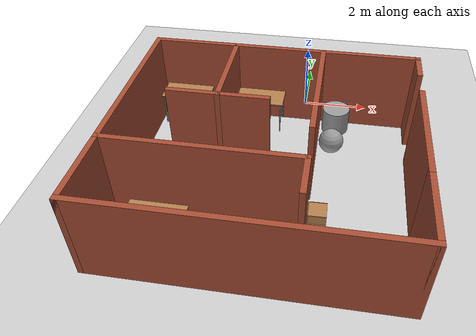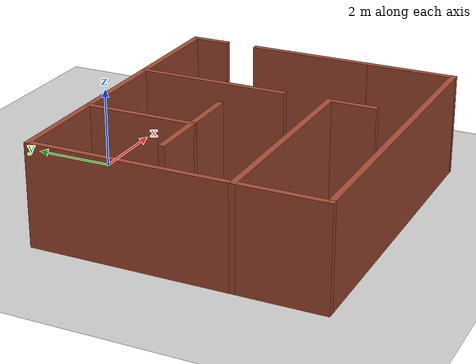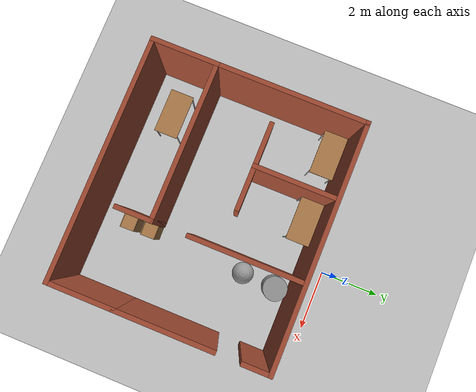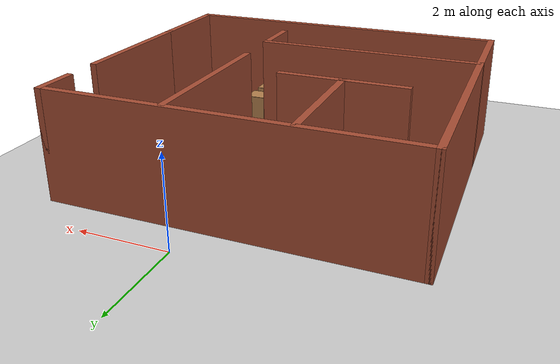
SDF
<sdf version="1.6">
 <world name="default">
  <light name="sun" type="directional">
   <pose>0 0 10 0 -0 0</pose>
   <diffuse>0.8 0.8 0.8 1</diffuse>
   <specular>0.2 0.2 0.2 1</specular>
   <attenuation>
    <range>1000</range>
    <constant>0.9</constant>
    <linear>0.01</linear>
    <quadratic>0.001</quadratic>
   </attenuation>
   <direction>-0.5 0.1 -0.9</direction>
  </light>
  <model name="ground_plane">
   <static>1</static>
   <link name="link">
    <collision name="collision">
     <geometry><plane><normal>0 0 1</normal><size>100 100</size></plane></geometry>
     <surface>
      <contact><collide_bitmask>65535</collide_bitmask></contact>
      <friction><ode><mu>100</mu><mu2>50</mu2></ode></friction>
     </surface>
    </collision>
    <visual name="visual">
     <cast_shadows>0</cast_shadows>
     <geometry><plane><normal>0 0 1</normal><size>100 100</size></plane></geometry>
     <material>
      <script><uri>file://media/materials/scripts/gazebo.material</uri><name>Gazebo/Grey</name></script>
     </material>
    </visual>
   </link>
  </model>
  <gravity>0 0 -9.8</gravity>
  <magnetic_field>6e-06 2.3e-05 -4.2e-05</magnetic_field>
  <atmosphere type="adiabatic"/>
  <physics name="default_physics" default="0" type="ode">
   <max_step_size>0.001</max_step_size>
   <real_time_factor>1</real_time_factor>
   <real_time_update_rate>1000</real_time_update_rate>
  </physics>
  <scene><ambient>0.4 0.4 0.4 1</ambient><background>0.7 0.7 0.7 1</background><shadows>1</shadows></scene>
  <audio><device>default</device></audio>
  <spherical_coordinates>
   <surface_model>EARTH_WGS84</surface_model>
   <latitude_deg>0</latitude_deg>
   <longitude_deg>0</longitude_deg>
   <elevation>0</elevation>
   <heading_deg>0</heading_deg>
  </spherical_coordinates>
  <model name="environment.world">
   <pose>-0.660546 -4.32211 0 0 -0 0</pose>
   <link name="Wall_17">
    <collision name="Wall_17_Collision">
     <geometry><box><size>5 0.15 2.5</size></box></geometry>
     <pose>0 0 1.25 0 -0 0</pose>
    </collision>
    <visual name="Wall_17_Visual">
     <pose>0 0 1.25 0 -0 0</pose>
     <geometry><box><size>5 0.15 2.5</size></box></geometry>
     <material>
      <script><uri>file://media/materials/scripts/gazebo.material</uri><name>Gazebo/Bricks</name></script>
      <ambient>1 1 1 1</ambient>
     </material>
     <meta><layer>0</layer></meta>
    </visual>
    <pose>-3.925 1.05 0 0 -0 1.5708</pose>
   </link>
   <link name="Wall_19">
    <collision name="Wall_19_Collision">
     <geometry><box><size>8 0.15 2.5</size></box></geometry>
     <pose>0 0 1.25 0 -0 0</pose>
    </collision>
    <visual name="Wall_19_Visual">
     <pose>0 0 1.25 0 -0 0</pose>
     <geometry><box><size>8 0.15 2.5</size></box></geometry>
     <material>
      <script><uri>file://media/materials/scripts/gazebo.material</uri><name>Gazebo/Bricks</name></script>
      <ambient>1 1 1 1</ambient>
     </material>
     <meta><layer>0</layer></meta>
    </visual>
    <pose>-0 3.475 0 0 -0 0</pose>
   </link>
   <link name="Wall_21">
    <collision name="Wall_21_Collision">
     <geometry><box><size>1 0.15 2.5</size></box></geometry>
     <pose>0 0 1.25 0 -0 0</pose>
    </collision>
    <visual name="Wall_21_Visual">
     <pose>0 0 1.25 0 -0 0</pose>
     <geometry><box><size>1 0.15 2.5</size></box></geometry>
     <material>
      <script><uri>file://media/materials/scripts/gazebo.material</uri><name>Gazebo/Bricks</name></script>
      <ambient>1 1 1 1</ambient>
     </material>
     <meta><layer>0</layer></meta>
    </visual>
    <pose>3.925 3.05 0 0 -0 -1.5708</pose>
   </link>
   <link name="Wall_23">
    <collision name="Wall_23_Collision">
     <geometry><box><size>3.25 0.15 2.5</size></box></geometry>
     <pose>0 0 1.25 0 -0 0</pose>
    </collision>
    <visual name="Wall_23_Visual">
     <pose>0 0 1.25 0 -0 0</pose>
     <geometry><box><size>3.25 0.15 2.5</size></box></geometry>
     <material>
      <script><uri>file://media/materials/scripts/gazebo.material</uri><name>Gazebo/Bricks</name></script>
      <ambient>1 1 1 1</ambient>
     </material>
     <meta><layer>0</layer></meta>
    </visual>
    <pose>3.925 0.175 0 0 -0 1.5708</pose>
   </link>
   <link name="Wall_25">
    <collision name="Wall_25_Collision">
     <geometry><box><size>3.75 0.15 2.5</size></box></geometry>
     <pose>0 0 1.25 0 -0 0</pose>
    </collision>
    <visual name="Wall_25_Visual">
     <pose>0 0 1.25 0 -0 0</pose>
     <geometry><box><size>3.75 0.15 2.5</size></box></geometry>
     <material>
      <script><uri>file://media/materials/scripts/gazebo.material</uri><name>Gazebo/Bricks</name></script>
      <ambient>1 1 1 1</ambient>
     </material>
     <meta><layer>0</layer></meta>
    </visual>
    <pose>1.16841 1.60961 0 0 -0 -1.5708</pose>
   </link>
   <link name="Wall_27">
    <collision name="Wall_27_Collision">
     <geometry><box><size>2.75 0.15 2.5</size></box></geometry>
     <pose>0 0 1.25 0 -0 0</pose>
    </collision>
    <visual name="Wall_27_Visual">
     <pose>0 0 1.25 0 -0 0</pose>
     <geometry><box><size>2.75 0.15 2.5</size></box></geometry>
     <material>
      <script><uri>file://media/materials/scripts/gazebo.material</uri><name>Gazebo/Bricks</name></script>
      <ambient>1 1 1 1</ambient>
     </material>
     <meta><layer>0</layer></meta>
    </visual>
    <pose>-1.46336 2.12283 0 0 -0 -1.5708</pose>
   </link>
   <link name="Wall_28">
    <collision name="Wall_28_Collision">
     <geometry><box><size>1.5 0.15 2.5</size></box></geometry>
     <pose>0 0 1.25 0 -0 0</pose>
    </collision>
    <visual name="Wall_28_Visual">
     <pose>0 0 1.25 0 -0 0</pose>
     <geometry><box><size>1.5 0.15 2.5</size></box></geometry>
     <material>
      <script><uri>file://media/materials/scripts/gazebo.material</uri><name>Gazebo/Bricks</name></script>
      <ambient>1 1 1 1</ambient>
     </material>
     <meta><layer>0</layer></meta>
    </visual>
    <pose>-0.788364 0.822833 0 0 -0 0</pose>
   </link>
   <link name="Wall_30">
    <collision name="Wall_30_Collision">
     <geometry><box><size>1.5 0.15 2.5</size></box></geometry>
     <pose>0 0 1.25 0 -0 0</pose>
    </collision>
    <visual name="Wall_30_Visual">
     <pose>0 0 1.25 0 -0 0</pose>
     <geometry><box><size>1.5 0.15 2.5</size></box></geometry>
     <material>
      <script><uri>file://media/materials/scripts/gazebo.material</uri><name>Gazebo/Bricks</name></script>
      <ambient>1 1 1 1</ambient>
     </material>
     <meta><layer>0</layer></meta>
    </visual>
    <pose>-2.13836 0.822833 0 0 -0 3.14159</pose>
   </link>
   <link name="Wall_32">
    <collision name="Wall_32_Collision">
     <geometry><box><size>2.25 0.15 2.5</size></box></geometry>
     <pose>0 0 1.25 0 -0 0</pose>
    </collision>
    <visual name="Wall_32_Visual">
     <pose>0 0 1.25 0 -0 0</pose>
     <geometry><box><size>2.25 0.15 2.5</size></box></geometry>
     <material>
      <script><uri>file://media/materials/scripts/gazebo.material</uri><name>Gazebo/Bricks</name></script>
      <ambient>1 1 1 1</ambient>
     </material>
     <meta><layer>0</layer></meta>
    </visual>
    <pose>-3.925 -2.425 0 0 -0 -1.5708</pose>
   </link>
   <link name="Wall_33">
    <collision name="Wall_33_Collision">
     <geometry><box><size>8 0.15 2.5</size></box></geometry>
     <pose>0 0 1.25 0 -0 0</pose>
    </collision>
    <visual name="Wall_33_Visual">
     <pose>0 0 1.25 0 -0 0</pose>
     <geometry><box><size>8 0.15 2.5</size></box></geometry>
     <material>
      <script><uri>file://media/materials/scripts/gazebo.material</uri><name>Gazebo/Bricks</name></script>
      <ambient>1 1 1 1</ambient>
     </material>
     <meta><layer>0</layer></meta>
    </visual>
    <pose>-0 -3.475 0 0 -0 0</pose>
   </link>
   <link name="Wall_34">
    <collision name="Wall_34_Collision">
     <geometry><box><size>2.25 0.15 2.5</size></box></geometry>
     <pose>0 0 1.25 0 -0 0</pose>
    </collision>
    <visual name="Wall_34_Visual">
     <pose>0 0 1.25 0 -0 0</pose>
     <geometry><box><size>2.25 0.15 2.5</size></box></geometry>
     <material>
      <script><uri>file://media/materials/scripts/gazebo.material</uri><name>Gazebo/Bricks</name></script>
      <ambient>1 1 1 1</ambient>
     </material>
     <meta><layer>0</layer></meta>
    </visual>
    <pose>3.925 -2.425 0 0 -0 1.5708</pose>
   </link>
   <link name="Wall_36">
    <collision name="Wall_36_Collision">
     <geometry><box><size>5.25 0.15 2.5</size></box></geometry>
     <pose>0 0 1.25 0 -0 0</pose>
    </collision>
    <visual name="Wall_36_Visual">
     <pose>0 0 1.25 0 -0 0</pose>
     <geometry><box><size>5.25 0.15 2.5</size></box></geometry>
     <material>
      <script><uri>file://media/materials/scripts/gazebo.material</uri><name>Gazebo/Bricks</name></script>
      <ambient>1 1 1 1</ambient>
     </material>
     <meta><layer>0</layer></meta>
    </visual>
    <pose>-1.375 -1.375 0 0 -0 0</pose>
   </link>
   <link name="Wall_38">
    <collision name="Wall_38_Collision">
     <geometry><box><size>1.25 0.15 2.5</size></box></geometry>
     <pose>0 0 1.25 0 -0 0</pose>
    </collision>
    <visual name="Wall_38_Visual">
     <pose>0 0 1.25 0 -0 0</pose>
     <geometry><box><size>1.25 0.15 2.5</size></box></geometry>
     <material>
      <script><uri>file://media/materials/scripts/gazebo.material</uri><name>Gazebo/Bricks</name></script>
      <ambient>1 1 1 1</ambient>
     </material>
     <meta><layer>0</layer></meta>
    </visual>
    <pose>1.175 -1.925 0 0 -0 -1.5708</pose>
   </link>
   <static>1</static>
  </model>
  <model name="table">
   <static>1</static>
   <link name="link">
    <collision name="surface">
     <pose>0 0 1 0 -0 0</pose>
     <geometry><box><size>1.5 0.8 0.03</size></box></geometry>
     <surface><friction><ode><mu>0.6</mu><mu2>0.6</mu2></ode></friction></surface>
    </collision>
    <visual name="visual1">
     <pose>0 0 1 0 -0 0</pose>
     <geometry><box><size>1.5 0.8 0.03</size></box></geometry>
     <material>
      <script><uri>file://media/materials/scripts/gazebo.material</uri><name>Gazebo/Wood</name></script>
     </material>
    </visual>
    <collision name="front_left_leg">
     <pose>0.68 0.38 0.5 0 -0 0</pose>
     <geometry><cylinder><radius>0.02</radius><length>1</length></cylinder></geometry>
    </collision>
    <visual name="front_left_leg">
     <pose>0.68 0.38 0.5 0 -0 0</pose>
     <geometry><cylinder><radius>0.02</radius><length>1</length></cylinder></geometry>
     <material>
      <script><uri>file://media/materials/scripts/gazebo.material</uri><name>Gazebo/Grey</name></script>
     </material>
    </visual>
    <collision name="front_right_leg">
     <pose>0.68 -0.38 0.5 0 -0 0</pose>
     <geometry><cylinder><radius>0.02</radius><length>1</length></cylinder></geometry>
    </collision>
    <visual name="front_right_leg">
     <pose>0.68 -0.38 0.5 0 -0 0</pose>
     <geometry><cylinder><radius>0.02</radius><length>1</length></cylinder></geometry>
     <material>
      <script><uri>file://media/materials/scripts/gazebo.material</uri><name>Gazebo/Grey</name></script>
     </material>
    </visual>
    <collision name="back_right_leg">
     <pose>-0.68 -0.38 0.5 0 -0 0</pose>
     <geometry><cylinder><radius>0.02</radius><length>1</length></cylinder></geometry>
    </collision>
    <visual name="back_right_leg">
     <pose>-0.68 -0.38 0.5 0 -0 0</pose>
     <geometry><cylinder><radius>0.02</radius><length>1</length></cylinder></geometry>
     <material>
      <script><uri>file://media/materials/scripts/gazebo.material</uri><name>Gazebo/Grey</name></script>
     </material>
    </visual>
    <collision name="back_left_leg">
     <pose>-0.68 0.38 0.5 0 -0 0</pose>
     <geometry><cylinder><radius>0.02</radius><length>1</length></cylinder></geometry>
    </collision>
    <visual name="back_left_leg">
     <pose>-0.68 0.38 0.5 0 -0 0</pose>
     <geometry><cylinder><radius>0.02</radius><length>1</length></cylinder></geometry>
     <material>
      <script><uri>file://media/materials/scripts/gazebo.material</uri><name>Gazebo/Grey</name></script>
     </material>
    </visual>
   </link>
   <pose>-3.03213 -6.65904 0 0 -0 0</pose>
  </model>
  <model name="table_0">
   <static>1</static>
   <link name="link">
    <collision name="surface">
     <pose>0 0 1 0 -0 0</pose>
     <geometry><box><size>1.5 0.8 0.03</size></box></geometry>
     <surface><friction><ode><mu>0.6</mu><mu2>0.6</mu2></ode></friction></surface>
    </collision>
    <visual name="visual1">
     <pose>0 0 1 0 -0 0</pose>
     <geometry><box><size>1.5 0.8 0.03</size></box></geometry>
     <material>
      <script><uri>file://media/materials/scripts/gazebo.material</uri><name>Gazebo/Wood</name></script>
     </material>
    </visual>
    <collision name="front_left_leg">
     <pose>0.68 0.38 0.5 0 -0 0</pose>
     <geometry><cylinder><radius>0.02</radius><length>1</length></cylinder></geometry>
    </collision>
    <visual name="front_left_leg">
     <pose>0.68 0.38 0.5 0 -0 0</pose>
     <geometry><cylinder><radius>0.02</radius><length>1</length></cylinder></geometry>
     <material>
      <script><uri>file://media/materials/scripts/gazebo.material</uri><name>Gazebo/Grey</name></script>
     </material>
    </visual>
    <collision name="front_right_leg">
     <pose>0.68 -0.38 0.5 0 -0 0</pose>
     <geometry><cylinder><radius>0.02</radius><length>1</length></cylinder></geometry>
    </collision>
    <visual name="front_right_leg">
     <pose>0.68 -0.38 0.5 0 -0 0</pose>
     <geometry><cylinder><radius>0.02</radius><length>1</length></cylinder></geometry>
     <material>
      <script><uri>file://media/materials/scripts/gazebo.material</uri><name>Gazebo/Grey</name></script>
     </material>
    </visual>
    <collision name="back_right_leg">
     <pose>-0.68 -0.38 0.5 0 -0 0</pose>
     <geometry><cylinder><radius>0.02</radius><length>1</length></cylinder></geometry>
    </collision>
    <visual name="back_right_leg">
     <pose>-0.68 -0.38 0.5 0 -0 0</pose>
     <geometry><cylinder><radius>0.02</radius><length>1</length></cylinder></geometry>
     <material>
      <script><uri>file://media/materials/scripts/gazebo.material</uri><name>Gazebo/Grey</name></script>
     </material>
    </visual>
    <collision name="back_left_leg">
     <pose>-0.68 0.38 0.5 0 -0 0</pose>
     <geometry><cylinder><radius>0.02</radius><length>1</length></cylinder></geometry>
    </collision>
    <visual name="back_left_leg">
     <pose>-0.68 0.38 0.5 0 -0 0</pose>
     <geometry><cylinder><radius>0.02</radius><length>1</length></cylinder></geometry>
     <material>
      <script><uri>file://media/materials/scripts/gazebo.material</uri><name>Gazebo/Grey</name></script>
     </material>
    </visual>
   </link>
   <pose>-3.6542 -1.38646 0 0 -0 0</pose>
  </model>
  <model name="table_1">
   <static>1</static>
   <link name="link">
    <collision name="surface">
     <pose>0 0 1 0 -0 0</pose>
     <geometry><box><size>1.5 0.8 0.03</size></box></geometry>
     <surface><friction><ode><mu>0.6</mu><mu2>0.6</mu2></ode></friction></surface>
    </collision>
    <visual name="visual1">
     <pose>0 0 1 0 -0 0</pose>
     <geometry><box><size>1.5 0.8 0.03</size></box></geometry>
     <material>
      <script><uri>file://media/materials/scripts/gazebo.material</uri><name>Gazebo/Wood</name></script>
     </material>
    </visual>
    <collision name="front_left_leg">
     <pose>0.68 0.38 0.5 0 -0 0</pose>
     <geometry><cylinder><radius>0.02</radius><length>1</length></cylinder></geometry>
    </collision>
    <visual name="front_left_leg">
     <pose>0.68 0.38 0.5 0 -0 0</pose>
     <geometry><cylinder><radius>0.02</radius><length>1</length></cylinder></geometry>
     <material>
      <script><uri>file://media/materials/scripts/gazebo.material</uri><name>Gazebo/Grey</name></script>
     </material>
    </visual>
    <collision name="front_right_leg">
     <pose>0.68 -0.38 0.5 0 -0 0</pose>
     <geometry><cylinder><radius>0.02</radius><length>1</length></cylinder></geometry>
    </collision>
    <visual name="front_right_leg">
     <pose>0.68 -0.38 0.5 0 -0 0</pose>
     <geometry><cylinder><radius>0.02</radius><length>1</length></cylinder></geometry>
     <material>
      <script><uri>file://media/materials/scripts/gazebo.material</uri><name>Gazebo/Grey</name></script>
     </material>
    </visual>
    <collision name="back_right_leg">
     <pose>-0.68 -0.38 0.5 0 -0 0</pose>
     <geometry><cylinder><radius>0.02</radius><length>1</length></cylinder></geometry>
    </collision>
    <visual name="back_right_leg">
     <pose>-0.68 -0.38 0.5 0 -0 0</pose>
     <geometry><cylinder><radius>0.02</radius><length>1</length></cylinder></geometry>
     <material>
      <script><uri>file://media/materials/scripts/gazebo.material</uri><name>Gazebo/Grey</name></script>
     </material>
    </visual>
    <collision name="back_left_leg">
     <pose>-0.68 0.38 0.5 0 -0 0</pose>
     <geometry><cylinder><radius>0.02</radius><length>1</length></cylinder></geometry>
    </collision>
    <visual name="back_left_leg">
     <pose>-0.68 0.38 0.5 0 -0 0</pose>
     <geometry><cylinder><radius>0.02</radius><length>1</length></cylinder></geometry>
     <material>
      <script><uri>file://media/materials/scripts/gazebo.material</uri><name>Gazebo/Grey</name></script>
     </material>
    </visual>
   </link>
   <pose>-1.33674 -1.31403 0 0 -0 0</pose>
  </model>
  <model name="unit_cylinder">
   <pose>1.06207 -1.41573 0.5 0 -0 0</pose>
   <link name="link">
    <inertial>
     <mass>1</mass>
     <inertia><ixx>0.145833</ixx><ixy>0</ixy><ixz>0</ixz><iyy>0.145833</iyy><iyz>0</iyz><izz>0.125</izz></inertia>
    </inertial>
    <collision name="collision">
     <geometry><cylinder><radius>0.405272</radius><length>0.761977</length></cylinder></geometry>
    </collision>
    <visual name="visual">
     <geometry><cylinder><radius>0.405272</radius><length>0.761977</length></cylinder></geometry>
     <material>
      <script><name>Gazebo/Grey</name><uri>file://media/materials/scripts/gazebo.material</uri></script>
     </material>
    </visual>
   </link>
  </model>
  <model name="unit_sphere">
   <pose>0.999387 -2.55255 0.5 0 -0 0</pose>
   <link name="link">
    <inertial>
     <mass>1</mass>
     <inertia><ixx>0.1</ixx><ixy>0</ixy><ixz>0</ixz><iyy>0.1</iyy><iyz>0</iyz><izz>0.1</izz></inertia>
    </inertial>
    <collision name="collision"><geometry><sphere><radius>0.36399</radius></sphere></geometry></collision>
    <visual name="visual">
     <geometry><sphere><radius>0.36399</radius></sphere></geometry>
     <material>
      <script><name>Gazebo/Grey</name><uri>file://media/materials/scripts/gazebo.material</uri></script>
     </material>
    </visual>
   </link>
  </model>
  <model name="cabinet">
   <static>1</static>
   <link name="cabinet_bottom_plate">
    <inertial>
     <pose>0 0 -1 0 -0 0</pose>
     <inertia><ixx>2.05</ixx><ixy>0</ixy><ixz>0</ixz><iyy>2.05</iyy><iyz>0</iyz><izz>2.05</izz></inertia>
     <mass>25</mass>
    </inertial>
    <collision name="cabinet_bottom_plate_geom">
     <pose>0 0 0.01 0 -0 0</pose>
     <geometry><box><size>0.45 0.45 0.02</size></box></geometry>
    </collision>
    <visual name="cabinet_bottom_plate_geom_visual">
     <pose>0 0 0.01 0 -0 0</pose>
     <geometry><box><size>0.45 0.45 0.02</size></box></geometry>
     <material>
      <script><uri>file://media/materials/scripts/gazebo.material</uri><name>Gazebo/Wood</name></script>
     </material>
    </visual>
    <collision name="cabinet_bottom_plate_geom_cabinet_back_plate">
     <pose>0.235 0 0.51 0 -0 0</pose>
     <geometry><box><size>0.02 0.45 1.02</size></box></geometry>
    </collision>
    <visual name="cabinet_bottom_plate_geom_cabinet_back_plate_visual">
     <pose>0.235 0 0.51 0 -0 0</pose>
     <geometry><box><size>0.02 0.45 1.02</size></box></geometry>
     <material>
      <script><uri>file://media/materials/scripts/gazebo.material</uri><name>Gazebo/Wood</name></script>
     </material>
    </visual>
    <collision name="cabinet_bottom_plate_geom_cabinet_left_plate">
     <pose>0 0.235 0.51 0 -0 0</pose>
     <geometry><box><size>0.45 0.02 1.02</size></box></geometry>
    </collision>
    <visual name="cabinet_bottom_plate_geom_cabinet_left_plate_visual">
     <pose>0 0.235 0.51 0 -0 0</pose>
     <geometry><box><size>0.45 0.02 1.02</size></box></geometry>
     <material>
      <script><uri>file://media/materials/scripts/gazebo.material</uri><name>Gazebo/Wood</name></script>
     </material>
    </visual>
    <collision name="cabinet_bottom_plate_geom_cabinet_middle_plate">
     <pose>0 0 0.51 0 -0 0</pose>
     <geometry><box><size>0.45 0.45 0.02</size></box></geometry>
    </collision>
    <visual name="cabinet_bottom_plate_geom_cabinet_middle_plate_visual">
     <pose>0 0 0.51 0 -0 0</pose>
     <geometry><box><size>0.45 0.45 0.02</size></box></geometry>
     <material>
      <script><uri>file://media/materials/scripts/gazebo.material</uri><name>Gazebo/Wood</name></script>
     </material>
    </visual>
    <collision name="cabinet_bottom_plate_geom_cabinet_right_plate">
     <pose>0 -0.235 0.51 0 -0 0</pose>
     <geometry><box><size>0.45 0.02 1.02</size></box></geometry>
    </collision>
    <visual name="cabinet_bottom_plate_geom_cabinet_right_plate_visual">
     <pose>0 -0.235 0.51 0 -0 0</pose>
     <geometry><box><size>0.45 0.02 1.02</size></box></geometry>
     <material>
      <script><uri>file://media/materials/scripts/gazebo.material</uri><name>Gazebo/Wood</name></script>
     </material>
    </visual>
    <collision name="cabinet_bottom_plate_geom_cabinet_top_plate">
     <pose>0 0 1.01 0 -0 0</pose>
     <geometry><box><size>0.45 0.45 0.02</size></box></geometry>
    </collision>
    <visual name="cabinet_bottom_plate_geom_cabinet_top_plate_visual">
     <pose>0 0 1.01 0 -0 0</pose>
     <geometry><box><size>0.45 0.45 0.02</size></box></geometry>
     <material>
      <script><uri>file://media/materials/scripts/gazebo.material</uri><name>Gazebo/Wood</name></script>
     </material>
    </visual>
   </link>
   <pose>0.840962 -5.89322 0 0 0 -3.12238</pose>
  </model>
  <model name="cabinet_clone">
   <static>1</static>
   <link name="cabinet_bottom_plate">
    <inertial>
     <pose>0 0 -1 0 -0 0</pose>
     <inertia><ixx>2.05</ixx><ixy>0</ixy><ixz>0</ixz><iyy>2.05</iyy><iyz>0</iyz><izz>2.05</izz></inertia>
     <mass>25</mass>
    </inertial>
    <collision name="cabinet_bottom_plate_geom">
     <pose>0 0 0.01 0 -0 0</pose>
     <geometry><box><size>0.45 0.45 0.02</size></box></geometry>
    </collision>
    <visual name="cabinet_bottom_plate_geom_visual">
     <pose>0 0 0.01 0 -0 0</pose>
     <geometry><box><size>0.45 0.45 0.02</size></box></geometry>
     <material>
      <script><uri>file://media/materials/scripts/gazebo.material</uri><name>Gazebo/Wood</name></script>
     </material>
    </visual>
    <collision name="cabinet_bottom_plate_geom_cabinet_back_plate">
     <pose>0.235 0 0.51 0 -0 0</pose>
     <geometry><box><size>0.02 0.45 1.02</size></box></geometry>
    </collision>
    <visual name="cabinet_bottom_plate_geom_cabinet_back_plate_visual">
     <pose>0.235 0 0.51 0 -0 0</pose>
     <geometry><box><size>0.02 0.45 1.02</size></box></geometry>
     <material>
      <script><uri>file://media/materials/scripts/gazebo.material</uri><name>Gazebo/Wood</name></script>
     </material>
    </visual>
    <collision name="cabinet_bottom_plate_geom_cabinet_left_plate">
     <pose>0 0.235 0.51 0 -0 0</pose>
     <geometry><box><size>0.45 0.02 1.02</size></box></geometry>
    </collision>
    <visual name="cabinet_bottom_plate_geom_cabinet_left_plate_visual">
     <pose>0 0.235 0.51 0 -0 0</pose>
     <geometry><box><size>0.45 0.02 1.02</size></box></geometry>
     <material>
      <script><uri>file://media/materials/scripts/gazebo.material</uri><name>Gazebo/Wood</name></script>
     </material>
    </visual>
    <collision name="cabinet_bottom_plate_geom_cabinet_middle_plate">
     <pose>0 0 0.51 0 -0 0</pose>
     <geometry><box><size>0.45 0.45 0.02</size></box></geometry>
    </collision>
    <visual name="cabinet_bottom_plate_geom_cabinet_middle_plate_visual">
     <pose>0 0 0.51 0 -0 0</pose>
     <geometry><box><size>0.45 0.45 0.02</size></box></geometry>
     <material>
      <script><uri>file://media/materials/scripts/gazebo.material</uri><name>Gazebo/Wood</name></script>
     </material>
    </visual>
    <collision name="cabinet_bottom_plate_geom_cabinet_right_plate">
     <pose>0 -0.235 0.51 0 -0 0</pose>
     <geometry><box><size>0.45 0.02 1.02</size></box></geometry>
    </collision>
    <visual name="cabinet_bottom_plate_geom_cabinet_right_plate_visual">
     <pose>0 -0.235 0.51 0 -0 0</pose>
     <geometry><box><size>0.45 0.02 1.02</size></box></geometry>
     <material>
      <script><uri>file://media/materials/scripts/gazebo.material</uri><name>Gazebo/Wood</name></script>
     </material>
    </visual>
    <collision name="cabinet_bottom_plate_geom_cabinet_top_plate">
     <pose>0 0 1.01 0 -0 0</pose>
     <geometry><box><size>0.45 0.45 0.02</size></box></geometry>
    </collision>
    <visual name="cabinet_bottom_plate_geom_cabinet_top_plate_visual">
     <pose>0 0 1.01 0 -0 0</pose>
     <geometry><box><size>0.45 0.45 0.02</size></box></geometry>
     <material>
      <script><uri>file://media/materials/scripts/gazebo.material</uri><name>Gazebo/Wood</name></script>
     </material>
    </visual>
   </link>
   <pose>0.852828 -6.608 0 0 0 -3.12238</pose>
  </model>
 </world>
</sdf>
